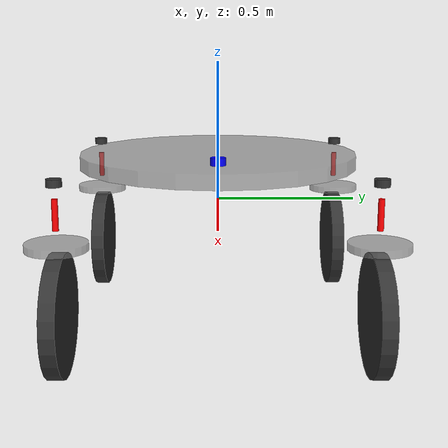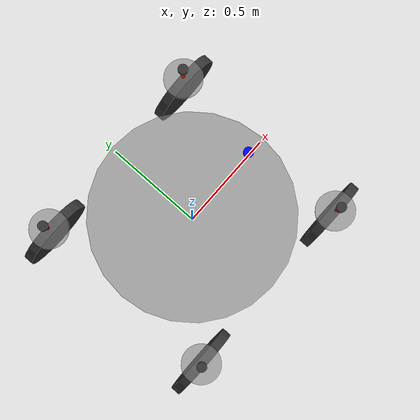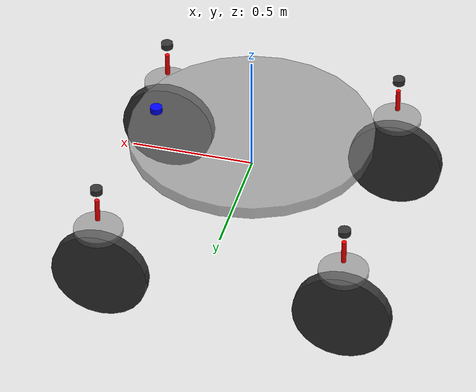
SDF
<?xml version="1.0" ?>
<sdf version="1.11" xmlns:xacro="http://www.ros.org/wiki/xacro">
  <model name="modular_robot_description_2">
    <!-- Base link -->
    <link name="base_link">
      <pose>0 0 0.15 0 0 0</pose>
      <inertial>
        <mass>0.1</mass>
        <inertia>
          <ixx>0.001</ixx>
          <iyy>0.001</iyy>
          <izz>0.001</izz>
        </inertia>
      </inertial>
    </link>

    <!-- Vehicle body -->
    <link name="body">
      <pose>0 0 0.15 0 0 0</pose>
      <inertial>
        <mass>50.0</mass>
        <inertia>
          <ixx>0.0118750</ixx>
          <iyy>0.0118750</iyy>
          <izz>0.0200000</izz>
        </inertia>
      </inertial>
      <visual name="body_visual">
        <geometry>
          <cylinder>
            <radius>0.5</radius>
            <length>0.05</length>
          </cylinder>
        </geometry>
        <material>
          <ambient>0.5 0.5 0.5 0.6</ambient>
          <diffuse>0.5 0.5 0.5 0.6</diffuse>
        </material>
      </visual>
      <collision name="body_collision">
        <geometry>
          <cylinder>
            <radius>0.5</radius>
            <length>0.05</length>
          </cylinder>
        </geometry>
        <surface>
          <friction>
            <ode>
              <mu>0.8</mu>
              <mu2>0.8</mu2>
            </ode>
          </friction>
        </surface>
      </collision>
    </link>

    <!-- Laser link -->
    <link name="laser_link">
      <pose>0.4 0 0.2 0 0 0</pose>
      <inertial>
        <mass>0.1</mass>
        <inertia>
          <ixx>0.001</ixx>
          <iyy>0.001</iyy>
          <izz>0.001</izz>
        </inertia>
      </inertial>
      <visual name="laser_visual">
        <geometry>
          <cylinder>
            <radius>0.025</radius>
            <length>0.025</length>
          </cylinder>
        </geometry>
        <material>
          <ambient>0.0 0.0 1.0 1.0</ambient>
          <diffuse>0.0 0.0 1.0 1.0</diffuse>
        </material>
      </visual>
      <collision name="laser_collision">
        <geometry>
          <cylinder>
            <radius>0.025</radius>
            <length>0.025</length>
          </cylinder>
        </geometry>
      </collision>
      <sensor name="Lidar" type="gpu_lidar">
        <gz_frame_id>laser_link</gz_frame_id>
        <topic>scan</topic>
        <update_rate>15</update_rate>
        <lidar>
          <scan>
            <horizontal>
              <samples>32000</samples>
              <resolution>1</resolution>
              <min_angle>0</min_angle>
              <max_angle>6.283185</max_angle>
            </horizontal>
            <vertical>
              <samples>1</samples>
              <resolution>0.1125</resolution>
              <min_angle>0.0</min_angle>
              <max_angle>0.0</max_angle>
            </vertical>
          </scan>
          <range>
            <min>0.05</min>
            <max>30</max>
            <resolution>0.01</resolution>
          </range>
          <frame_id>/Lidar_Link</frame_id>
          <noise>
            <type>gaussian</type>
            <mean>0.0</mean>
            <std_dev>0.3</std_dev>
          </noise>
        </lidar>
        <always_on>1</always_on>
        <visualize>true</visualize>
      </sensor>
    </link>

    <!-- Base joint -->
    <joint name="base_joint" type="fixed">
      <parent>base_link</parent>
      <child>body</child>
    </joint>

    <!-- Laser joint -->
    <joint name="laser_joint" type="fixed">
      <parent>body</parent>
      <child>laser_link</child>
    </joint>

    <!-- Front Left Wheel Assembly -->
    <link name="front_left_wheel_base_link">
      <pose>0.5 0.5 0.15 0 0 0</pose>
      <inertial>
        <mass>0.01</mass>
        <inertia>
          <ixx>0.01</ixx>
          <iyy>0.01</iyy>
          <izz>0.01</izz>
        </inertia>
      </inertial>
      <visual name="fl_base_visual">
        <geometry>
          <cylinder>
            <radius>0.025</radius>
            <length>0.025</length>
          </cylinder>
        </geometry>
        <material>
          <ambient>0.2 0.2 0.2 1.0</ambient>
          <diffuse>0.2 0.2 0.2 1.0</diffuse>
        </material>
      </visual>
      <collision name="fl_base_collision">
        <geometry>
          <cylinder>
            <radius>0.025</radius>
            <length>0.025</length>
          </cylinder>
        </geometry>
      </collision>
    </link>

    <link name="front_left_wheel_suspension">
      <pose>0.5 0.5 0.05 0 0 0</pose>
      <inertial>
        <mass>0.01</mass>
        <inertia>
          <ixx>0.01</ixx>
          <iyy>0.01</iyy>
          <izz>0.01</izz>
        </inertia>
      </inertial>
      <visual name="fl_suspension_visual">
        <geometry>
          <cylinder>
            <radius>0.01</radius>
            <length>0.1</length>
          </cylinder>
        </geometry>
        <material>
          <ambient>1.0 0.0 0.0 1.0</ambient>
          <diffuse>1.0 0.0 0.0 1.0</diffuse>
        </material>
      </visual>
      <collision name="fl_suspension_collision">
        <geometry>
          <cylinder>
            <radius>0.01</radius>
            <length>0.1</length>
          </cylinder>
        </geometry>
      </collision>
    </link>

    <link name="front_left_wheel_steer">
      <pose>0.5 0.5 -0.05 0 0 0</pose>
      <inertial>
        <mass>0.01</mass>
        <inertia>
          <ixx>0.01</ixx>
          <iyy>0.01</iyy>
          <izz>0.01</izz>
        </inertia>
      </inertial>
      <visual name="fl_steer_visual">
        <geometry>
          <cylinder>
            <radius>0.1</radius>
            <length>0.025</length>
          </cylinder>
        </geometry>
        <material>
          <ambient>0.5 0.5 0.5 0.6</ambient>
          <diffuse>0.5 0.5 0.5 0.6</diffuse>
        </material>
      </visual>
      <collision name="fl_steer_collision">
        <geometry>
          <cylinder>
            <radius>0.1</radius>
            <length>0.025</length>
          </cylinder>
        </geometry>
      </collision>
    </link>

    <link name="front_left_wheel_rotor">
      <pose>0.5 0.5 -0.275 1.57 0 0</pose>
      <inertial>
        <mass>5.0</mass>
        <inertia>
          <ixx>0.0029167</ixx>
          <iyy>0.0029167</iyy>
          <izz>0.0056250</izz>
        </inertia>
      </inertial>
      <visual name="fl_wheel_visual">
        <geometry>
          <cylinder>
            <radius>0.2</radius>
            <length>0.05</length>
          </cylinder>
        </geometry>
        <material>
          <ambient>0.2 0.2 0.2 1.0</ambient>
          <diffuse>0.2 0.2 0.2 1.0</diffuse>
        </material>
      </visual>
      <collision name="fl_wheel_collision">
        <geometry>
          <cylinder>
            <radius>0.2</radius>
            <length>0.05</length>
          </cylinder>
        </geometry>
        <surface>
          <friction>
            <ode>
              <mu>0.8</mu>
              <mu2>0.8</mu2>
            </ode>
          </friction>
        </surface>
      </collision>
    </link>

    <!-- Front Left Joints -->
    <joint name="front_left_wheel_joint" type="fixed">
      <parent>body</parent>
      <child>front_left_wheel_base_link</child>
    </joint>

    <joint name="front_left_wheel_suspension_joint" type="prismatic">
      <parent>front_left_wheel_base_link</parent>
      <child>front_left_wheel_suspension</child>
      <axis>
        <xyz>0 0 1</xyz>
        <limit>
          <lower>-0.02</lower>
          <upper>0.02</upper>
          <effort>100</effort>
          <velocity>1.0</velocity>
        </limit>
        <dynamics>
          <damping>0.1</damping>
          <spring_stiffness>50000</spring_stiffness>
          <spring_reference>0</spring_reference>
        </dynamics>
      </axis>
    </joint>

    <joint name="front_left_wheel_steer_joint" type="revolute">
      <parent>front_left_wheel_suspension</parent>
      <child>front_left_wheel_steer</child>
      <axis>
        <xyz>0 0 1</xyz>
        <limit>
          <lower>-3.14159</lower>
          <upper>3.14159</upper>
          <effort>500</effort>
          <velocity>10</velocity>
        </limit>
      </axis>
    </joint>

    <joint name="front_left_wheel_rotor_joint" type="revolute">
      <parent>front_left_wheel_steer</parent>
      <child>front_left_wheel_rotor</child>
      <axis>
        <xyz>0 0 -1</xyz>
        <dynamics>
          <damping>0.1</damping>
        </dynamics>
      </axis>
    </joint>

    <!-- Front Right Wheel Assembly -->
    <link name="front_right_wheel_base_link">
      <pose>0.5 -0.5 0.15 0 0 0</pose>
      <inertial>
        <mass>0.01</mass>
        <inertia>
          <ixx>0.01</ixx>
          <iyy>0.01</iyy>
          <izz>0.01</izz>
        </inertia>
      </inertial>
      <visual name="fr_base_visual">
        <geometry>
          <cylinder>
            <radius>0.025</radius>
            <length>0.025</length>
          </cylinder>
        </geometry>
        <material>
          <ambient>0.2 0.2 0.2 1.0</ambient>
          <diffuse>0.2 0.2 0.2 1.0</diffuse>
        </material>
      </visual>
      <collision name="fr_base_collision">
        <geometry>
          <cylinder>
            <radius>0.025</radius>
            <length>0.025</length>
          </cylinder>
        </geometry>
      </collision>
    </link>

    <link name="front_right_wheel_suspension">
      <pose>0.5 -0.5 0.05 0 0 0</pose>
      <inertial>
        <mass>0.01</mass>
        <inertia>
          <ixx>0.01</ixx>
          <iyy>0.01</iyy>
          <izz>0.01</izz>
        </inertia>
      </inertial>
      <visual name="fr_suspension_visual">
        <geometry>
          <cylinder>
            <radius>0.01</radius>
            <length>0.1</length>
          </cylinder>
        </geometry>
        <material>
          <ambient>1.0 0.0 0.0 1.0</ambient>
          <diffuse>1.0 0.0 0.0 1.0</diffuse>
        </material>
      </visual>
      <collision name="fr_suspension_collision">
        <geometry>
          <cylinder>
            <radius>0.01</radius>
            <length>0.1</length>
          </cylinder>
        </geometry>
      </collision>
    </link>

    <link name="front_right_wheel_steer">
      <pose>0.5 -0.5 -0.05 0 0 0</pose>
      <inertial>
        <mass>0.01</mass>
        <inertia>
          <ixx>0.01</ixx>
          <iyy>0.01</iyy>
          <izz>0.01</izz>
        </inertia>
      </inertial>
      <visual name="fr_steer_visual">
        <geometry>
          <cylinder>
            <radius>0.1</radius>
            <length>0.025</length>
          </cylinder>
        </geometry>
        <material>
          <ambient>0.5 0.5 0.5 0.6</ambient>
          <diffuse>0.5 0.5 0.5 0.6</diffuse>
        </material>
      </visual>
      <collision name="fr_steer_collision">
        <geometry>
          <cylinder>
            <radius>0.1</radius>
            <length>0.025</length>
          </cylinder>
        </geometry>
      </collision>
    </link>

    <link name="front_right_wheel_rotor">
      <pose>0.5 -0.5 -0.275 1.57 0 0</pose>
      <inertial>
        <mass>5.0</mass>
        <inertia>
          <ixx>0.0029167</ixx>
          <iyy>0.0029167</iyy>
          <izz>0.0056250</izz>
        </inertia>
      </inertial>
      <visual name="fr_wheel_visual">
        <geometry>
          <cylinder>
            <radius>0.2</radius>
            <length>0.05</length>
          </cylinder>
        </geometry>
        <material>
          <ambient>0.2 0.2 0.2 1.0</ambient>
          <diffuse>0.2 0.2 0.2 1.0</diffuse>
        </material>
      </visual>
      <collision name="fr_wheel_collision">
        <geometry>
          <cylinder>
            <radius>0.2</radius>
            <length>0.05</length>
          </cylinder>
        </geometry>
        <surface>
          <friction>
            <ode>
              <mu>0.8</mu>
              <mu2>0.8</mu2>
            </ode>
          </friction>
        </surface>
      </collision>
    </link>

    <!-- Front Right Joints -->
    <joint name="front_right_wheel_joint" type="fixed">
      <parent>body</parent>
      <child>front_right_wheel_base_link</child>
    </joint>

    <joint name="front_right_wheel_suspension_joint" type="prismatic">
      <parent>front_right_wheel_base_link</parent>
      <child>front_right_wheel_suspension</child>
      <axis>
        <xyz>0 0 1</xyz>
        <limit>
          <lower>-0.02</lower>
          <upper>0.02</upper>
          <effort>500</effort>
          <velocity>1.0</velocity>
        </limit>
        <dynamics>
          <damping>0.1</damping>
          <spring_stiffness>50000</spring_stiffness>
          <spring_reference>0</spring_reference>
        </dynamics>
      </axis>
    </joint>

    <joint name="front_right_wheel_steer_joint" type="revolute">
      <parent>front_right_wheel_suspension</parent>
      <child>front_right_wheel_steer</child>
      <axis>
        <xyz>0 0 1</xyz>
        <limit>
          <lower>-3.14159</lower>
          <upper>3.14159</upper>
          <effort>500</effort>
          <velocity>10</velocity>
        </limit>
      </axis>
    </joint>

    <joint name="front_right_wheel_rotor_joint" type="revolute">
      <parent>front_right_wheel_steer</parent>
      <child>front_right_wheel_rotor</child>
      <axis>
        <xyz>0 0 -1</xyz>
        <dynamics>
          <damping>0.1</damping>
        </dynamics>
      </axis>
    </joint>

    <!-- Rear Left Wheel Assembly -->
    <link name="rear_left_wheel_base_link">
      <pose>-0.5 0.5 0.15 0 0 0</pose>
      <inertial>
        <mass>0.01</mass>
        <inertia>
          <ixx>0.01</ixx>
          <iyy>0.01</iyy>
          <izz>0.01</izz>
        </inertia>
      </inertial>
      <visual name="rl_base_visual">
        <geometry>
          <cylinder>
            <radius>0.025</radius>
            <length>0.025</length>
          </cylinder>
        </geometry>
        <material>
          <ambient>0.2 0.2 0.2 1.0</ambient>
          <diffuse>0.2 0.2 0.2 1.0</diffuse>
        </material>
      </visual>
      <collision name="rl_base_collision">
        <geometry>
          <cylinder>
            <radius>0.025</radius>
            <length>0.025</length>
          </cylinder>
        </geometry>
      </collision>
    </link>

    <link name="rear_left_wheel_suspension">
      <pose>-0.5 0.5 0.05 0 0 0</pose>
      <inertial>
        <mass>0.01</mass>
        <inertia>
          <ixx>0.01</ixx>
          <iyy>0.01</iyy>
          <izz>0.01</izz>
        </inertia>
      </inertial>
      <visual name="rl_suspension_visual">
        <geometry>
          <cylinder>
            <radius>0.01</radius>
            <length>0.1</length>
          </cylinder>
        </geometry>
        <material>
          <ambient>1.0 0.0 0.0 1.0</ambient>
          <diffuse>1.0 0.0 0.0 1.0</diffuse>
        </material>
      </visual>
      <collision name="rl_suspension_collision">
        <geometry>
          <cylinder>
            <radius>0.01</radius>
            <length>0.1</length>
          </cylinder>
        </geometry>
      </collision>
    </link>

    <link name="rear_left_wheel_steer">
      <pose>-0.5 0.5 -0.05 0 0 0</pose>
      <inertial>
        <mass>0.01</mass>
        <inertia>
          <ixx>0.01</ixx>
          <iyy>0.01</iyy>
          <izz>0.01</izz>
        </inertia>
      </inertial>
      <visual name="rl_steer_visual">
        <geometry>
          <cylinder>
            <radius>0.1</radius>
            <length>0.025</length>
          </cylinder>
        </geometry>
        <material>
          <ambient>0.5 0.5 0.5 0.6</ambient>
          <diffuse>0.5 0.5 0.5 0.6</diffuse>
        </material>
      </visual>
      <collision name="rl_steer_collision">
        <geometry>
          <cylinder>
            <radius>0.1</radius>
            <length>0.025</length>
          </cylinder>
        </geometry>
      </collision>
    </link>

    <link name="rear_left_wheel_rotor">
      <pose>-0.5 0.5 -0.275 1.57 0 0</pose>
      <inertial>
        <mass>5.0</mass>
        <inertia>
          <ixx>0.0029167</ixx>
          <iyy>0.0029167</iyy>
          <izz>0.0056250</izz>
        </inertia>
      </inertial>
      <visual name="rl_wheel_visual">
        <geometry>
          <cylinder>
            <radius>0.2</radius>
            <length>0.05</length>
          </cylinder>
        </geometry>
        <material>
          <ambient>0.2 0.2 0.2 1.0</ambient>
          <diffuse>0.2 0.2 0.2 1.0</diffuse>
        </material>
      </visual>
      <collision name="rl_wheel_collision">
        <geometry>
          <cylinder>
            <radius>0.2</radius>
            <length>0.05</length>
          </cylinder>
        </geometry>
        <surface>
          <friction>
            <ode>
              <mu>0.8</mu>
              <mu2>0.8</mu2>
            </ode>
          </friction>
        </surface>
      </collision>
    </link>

    <!-- Rear Left Joints -->
    <joint name="rear_left_wheel_joint" type="fixed">
      <parent>body</parent>
      <child>rear_left_wheel_base_link</child>
    </joint>

    <joint name="rear_left_wheel_suspension_joint" type="prismatic">
      <parent>rear_left_wheel_base_link</parent>
      <child>rear_left_wheel_suspension</child>
      <axis>
        <xyz>0 0 1</xyz>
        <limit>
          <lower>-0.02</lower>
          <upper>0.02</upper>
          <effort>500</effort>
          <velocity>1.0</velocity>
        </limit>
        <dynamics>
          <damping>0.1</damping>
          <spring_stiffness>50000</spring_stiffness>
          <spring_reference>0</spring_reference>
        </dynamics>
      </axis>
    </joint>

    <joint name="rear_left_wheel_steer_joint" type="revolute">
      <parent>rear_left_wheel_suspension</parent>
      <child>rear_left_wheel_steer</child>
      <axis>
        <xyz>0 0 1</xyz>
        <limit>
          <lower>-3.14159</lower>
          <upper>3.14159</upper>
          <effort>500</effort>
          <velocity>10</velocity>
        </limit>
      </axis>
    </joint>

    <joint name="rear_left_wheel_rotor_joint" type="revolute">
      <parent>rear_left_wheel_steer</parent>
      <child>rear_left_wheel_rotor</child>
      <axis>
        <xyz>0 0 -1</xyz>
        <dynamics>
          <damping>0.1</damping>
        </dynamics>
      </axis>
    </joint>

    <!-- Rear Right Wheel Assembly -->
    <link name="rear_right_wheel_base_link">
      <pose>-0.5 -0.5 0.15 0 0 0</pose>
      <inertial>
        <mass>0.01</mass>
        <inertia>
          <ixx>0.01</ixx>
          <iyy>0.01</iyy>
          <izz>0.01</izz>
        </inertia>
      </inertial>
      <visual name="rr_base_visual">
        <geometry>
          <cylinder>
            <radius>0.025</radius>
            <length>0.025</length>
          </cylinder>
        </geometry>
        <material>
          <ambient>0.2 0.2 0.2 1.0</ambient>
          <diffuse>0.2 0.2 0.2 1.0</diffuse>
        </material>
      </visual>
      <collision name="rr_base_collision">
        <geometry>
          <cylinder>
            <radius>0.025</radius>
            <length>0.025</length>
          </cylinder>
        </geometry>
      </collision>
    </link>

    <link name="rear_right_wheel_suspension">
      <pose>-0.5 -0.5 0.05 0 0 0</pose>
      <inertial>
        <mass>0.01</mass>
        <inertia>
          <ixx>0.01</ixx>
          <iyy>0.01</iyy>
          <izz>0.01</izz>
        </inertia>
      </inertial>
      <visual name="rr_suspension_visual">
        <geometry>
          <cylinder>
            <radius>0.01</radius>
            <length>0.1</length>
          </cylinder>
        </geometry>
        <material>
          <ambient>1.0 0.0 0.0 1.0</ambient>
          <diffuse>1.0 0.0 0.0 1.0</diffuse>
        </material>
      </visual>
      <collision name="rr_suspension_collision">
        <geometry>
          <cylinder>
            <radius>0.01</radius>
            <length>0.1</length>
          </cylinder>
        </geometry>
      </collision>
    </link>

    <link name="rear_right_wheel_steer">
      <pose>-0.5 -0.5 -0.05 0 0 0</pose>
      <inertial>
        <mass>0.01</mass>
        <inertia>
          <ixx>0.01</ixx>
          <iyy>0.01</iyy>
          <izz>0.01</izz>
        </inertia>
      </inertial>
      <visual name="rr_steer_visual">
        <geometry>
          <cylinder>
            <radius>0.1</radius>
            <length>0.025</length>
          </cylinder>
        </geometry>
        <material>
          <ambient>0.5 0.5 0.5 0.6</ambient>
          <diffuse>0.5 0.5 0.5 0.6</diffuse>
        </material>
      </visual>
      <collision name="rr_steer_collision">
        <geometry>
          <cylinder>
            <radius>0.1</radius>
            <length>0.025</length>
          </cylinder>
        </geometry>
      </collision>
    </link>

    <link name="rear_right_wheel_rotor">
      <pose>-0.5 -0.5 -0.275 1.57 0 0</pose>
      <inertial>
        <mass>5.0</mass>
        <inertia>
          <ixx>0.0029167</ixx>
          <iyy>0.0029167</iyy>
          <izz>0.0056250</izz>
        </inertia>
      </inertial>
      <visual name="rr_wheel_visual">
        <geometry>
          <cylinder>
            <radius>0.2</radius>
            <length>0.05</length>
          </cylinder>
        </geometry>
        <material>
          <ambient>0.2 0.2 0.2 1.0</ambient>
          <diffuse>0.2 0.2 0.2 1.0</diffuse>
        </material>
      </visual>
      <collision name="rr_wheel_collision">
        <geometry>
          <cylinder>
            <radius>0.2</radius>
            <length>0.05</length>
          </cylinder>
        </geometry>
        <surface>
          <friction>
            <ode>
              <mu>0.8</mu>
              <mu2>0.8</mu2>
            </ode>
          </friction>
        </surface>
      </collision>
    </link>

    <!-- Rear Right Joints -->
    <joint name="rear_right_wheel_joint" type="fixed">
      <parent>body</parent>
      <child>rear_right_wheel_base_link</child>
    </joint>

    <joint name="rear_right_wheel_suspension_joint" type="prismatic">
      <parent>rear_right_wheel_base_link</parent>
      <child>rear_right_wheel_suspension</child>
      <axis>
        <xyz>0 0 1</xyz>
        <limit>
          <lower>-0.02</lower>
          <upper>0.02</upper>
          <effort>500</effort>
          <velocity>1.0</velocity>
        </limit>
        <dynamics>
          <damping>0.1</damping>
          <spring_stiffness>50000</spring_stiffness>
          <spring_reference>0</spring_reference>
        </dynamics>
      </axis>
    </joint>

    <joint name="rear_right_wheel_steer_joint" type="revolute">
      <parent>rear_right_wheel_suspension</parent>
      <child>rear_right_wheel_steer</child>
      <axis>
        <xyz>0 0 1</xyz>
        <limit>
          <lower>-3.14159</lower>
          <upper>3.14159</upper>
          <effort>500</effort>
          <velocity>10</velocity>
        </limit>
      </axis>
    </joint>

    <joint name="rear_right_wheel_rotor_joint" type="revolute">
      <parent>rear_right_wheel_steer</parent>
      <child>rear_right_wheel_rotor</child>
      <axis>
        <xyz>0 0 -1</xyz>
        <dynamics>
          <damping>0.1</damping>
        </dynamics>
      </axis>
    </joint>

    <plugin
      filename="gz-sim-joint-position-controller-system"
      name="gz::sim::systems::JointPositionController">
      <joint_name>front_right_wheel_steer_joint</joint_name>
      <topic>fr_steering_pos_arm_joint</topic>
      <use_velocity_commands>true</use_velocity_commands>
      <cmd_max>10.0</cmd_max> <cmd_min>-10.0</cmd_min>
    </plugin>

    <plugin
      filename="gz-sim-joint-position-controller-system"
      name="gz::sim::systems::JointPositionController">
      <joint_name>front_left_wheel_steer_joint</joint_name>
      <topic>fl_steering_pos_arm_joint</topic>
      <use_velocity_commands>true</use_velocity_commands>
      <cmd_max>10.0</cmd_max> <cmd_min>-10.0</cmd_min>
    </plugin>

    <plugin
      filename="gz-sim-joint-position-controller-system"
      name="gz::sim::systems::JointPositionController">
      <joint_name>rear_right_wheel_steer_joint</joint_name>
      <topic>rr_steering_pos_arm_joint</topic>
      <use_velocity_commands>true</use_velocity_commands>
      <cmd_max>10.0</cmd_max> <cmd_min>-10.0</cmd_min>
    </plugin>

    <plugin
      filename="gz-sim-joint-position-controller-system"
      name="gz::sim::systems::JointPositionController">
      <joint_name>rear_left_wheel_steer_joint</joint_name>
      <topic>rl_steering_pos_arm_joint</topic>
      <use_velocity_commands>true</use_velocity_commands>
      <cmd_max>10.0</cmd_max> <cmd_min>-10.0</cmd_min>
    </plugin>

    <plugin
      filename="gz-sim-joint-controller-system"
      name="gz::sim::systems::JointController">
      <joint_name>rear_right_wheel_rotor_joint</joint_name>
      <topic>rr_motor_vel</topic>
      <initial_velocity>0.0</initial_velocity>
    </plugin>

    <plugin
      filename="gz-sim-joint-controller-system"
      name="gz::sim::systems::JointController">
      <joint_name>rear_left_wheel_rotor_joint</joint_name>
      <topic>rl_motor_vel</topic>
      <initial_velocity>0.0</initial_velocity>
    </plugin>

    <plugin
      filename="gz-sim-joint-controller-system"
      name="gz::sim::systems::JointController">
      <joint_name>front_right_wheel_rotor_joint</joint_name>
      <topic>fr_motor_vel</topic>
      <initial_velocity>0.0</initial_velocity>
    </plugin>

    <plugin
      filename="gz-sim-joint-controller-system"
      name="gz::sim::systems::JointController">
      <joint_name>front_left_wheel_rotor_joint</joint_name>
      <topic>fl_motor_vel</topic>
      <initial_velocity>0.0</initial_velocity>
    </plugin>

    <plugin
      filename="gz-sim-joint-state-publisher-system"
      name="gz::sim::systems::JointStatePublisher">
      <topic>joints_feedback</topic>
    </plugin>

    <plugin filename="ignition-gazebo-odometry-publisher-system"
      name="ignition::gazebo::systems::OdometryPublisher">
      <odom_frame>odom</odom_frame>
      <odom_covariance_topic>odom</odom_covariance_topic>
      <tf_topic>tf</tf_topic>
      <robot_base_frame>base_link</robot_base_frame>
      <odom_publish_frequency>100</odom_publish_frequency>
    </plugin>
  </model>
</sdf>
